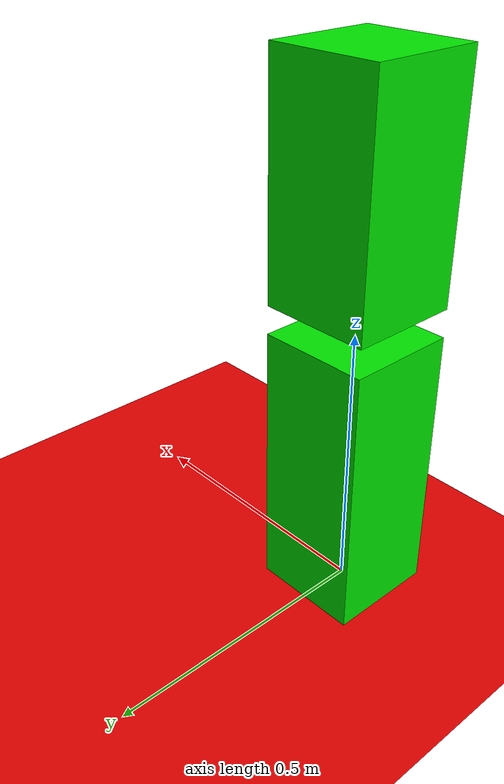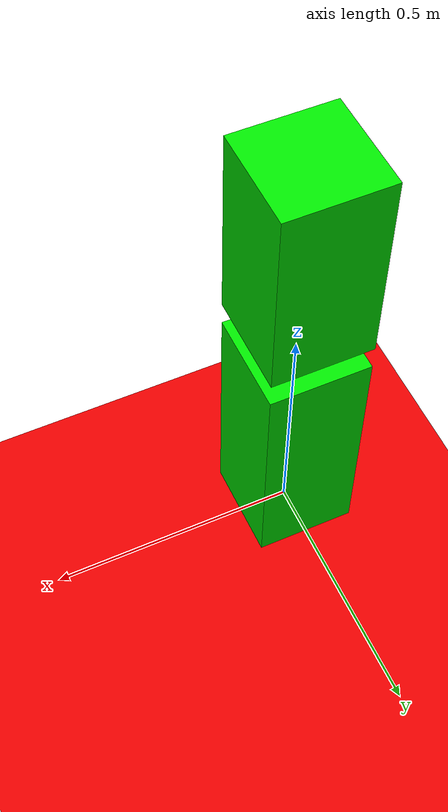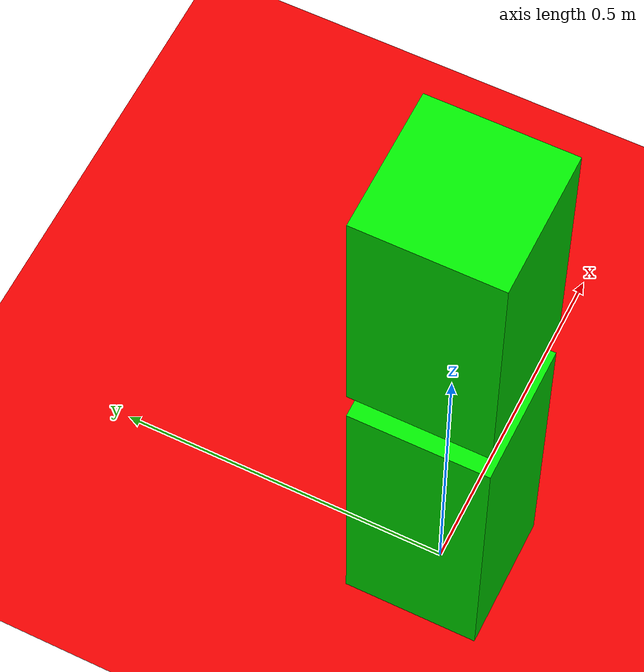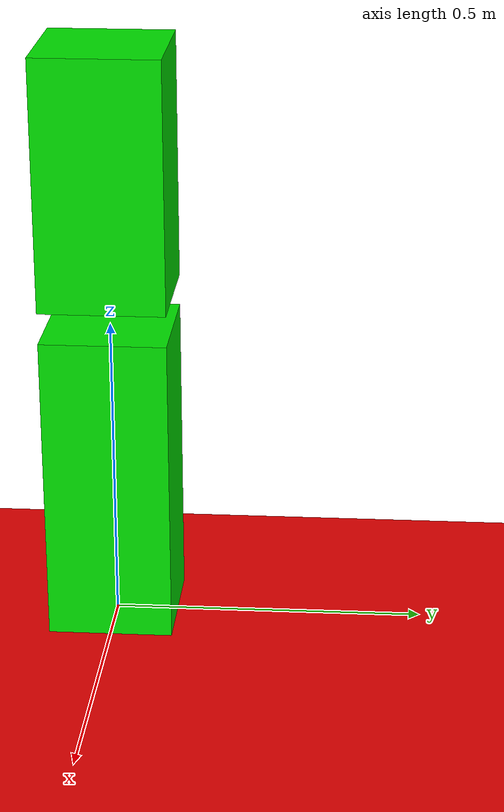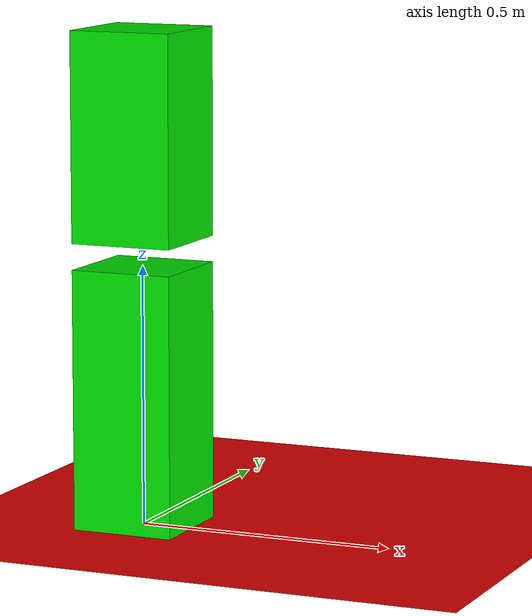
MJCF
<mujoco>
    <compiler angle="radian" />
    <worldbody>
        <light diffuse=".5 .5 .5" pos="0 0 3" dir="0 0 -1"/>
        <geom type="plane" size="10 10 0.1" rgba=".9 0 0 1"/>
        <body pos="0 0 .25" >
            <inertial pos="0 0 0" mass="10" diaginertia="0.0102675 0.0102675 0.00666" />
            <joint type="slide" axis="0 0 1" />
            <geom type="box" contype="0" conaffinity="0" group="1" size=".1 .1 .25" rgba="0 .9 0 1"/>
            <geom type='box' size=".1 .1 .25" rgba="0 .9 0 1"/>
            <body pos="0 0 .5" quat="1 0 0 0">
                <inertial pos="0 0 0" mass="0" diaginertia="0.0102675 0.0102675 0.00666" />
                <joint name="joint1" type="hinge" pos="0 0 -0.3" axis="0 1 0" limited="true" range="-3.14159 3.14159" />
                <geom type="box" contype="0" conaffinity="0" group="1" size=".1 .1 .2" rgba="0 .9 0 1"/>
                <geom type="box" size=".1 .1 .2" rgba="1 .9 0 1"/>
            </body>
        </body>
    </worldbody>
    <actuator>
        <motor name='joint1' ctrllimited="true" ctrlrange="-0.5 0.5" joint='joint1' gear="101"/> <!--range -150 150-->
    </actuator>
</mujoco>
